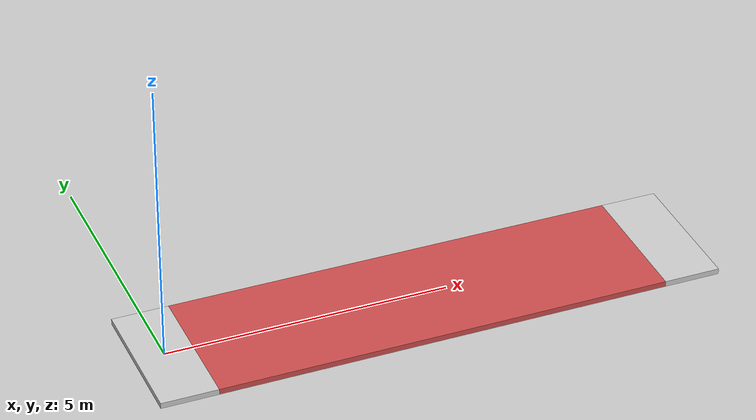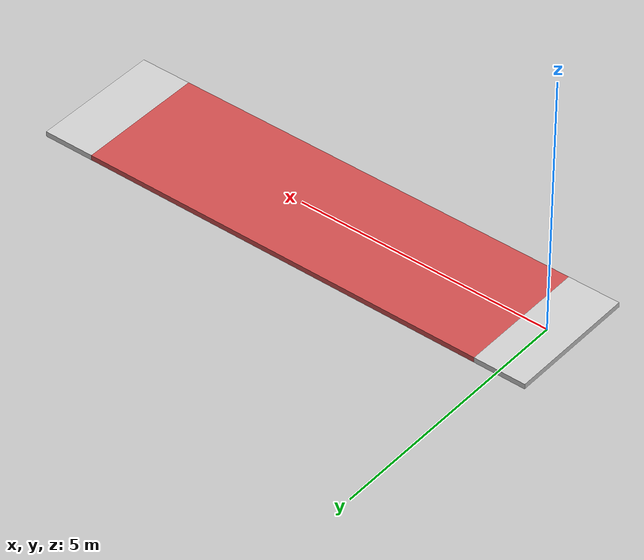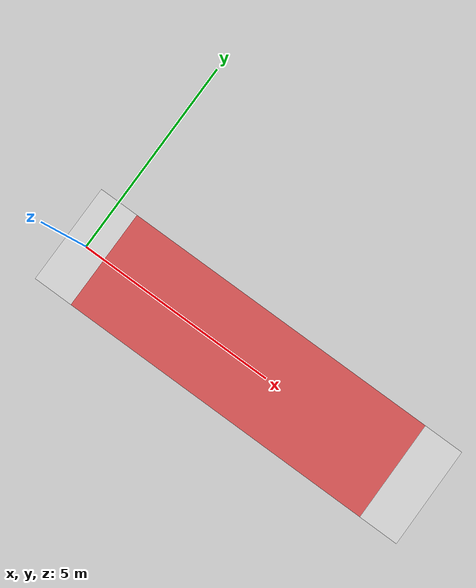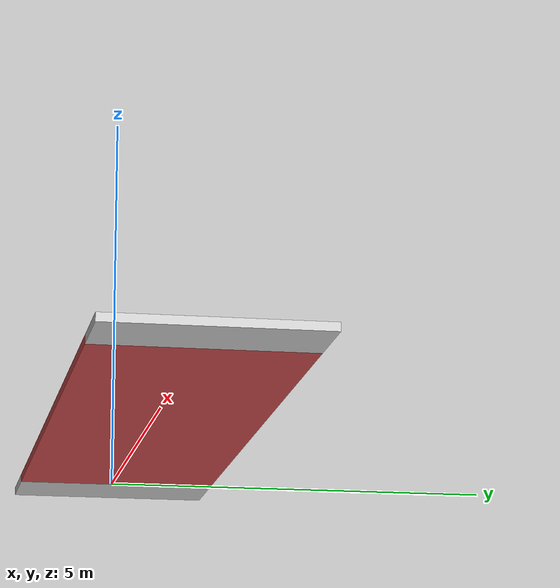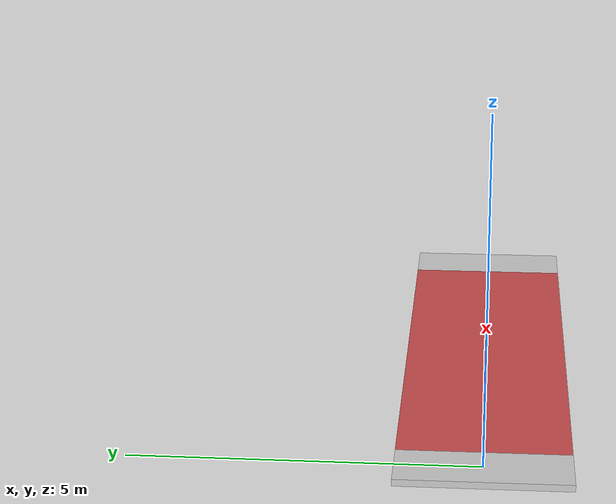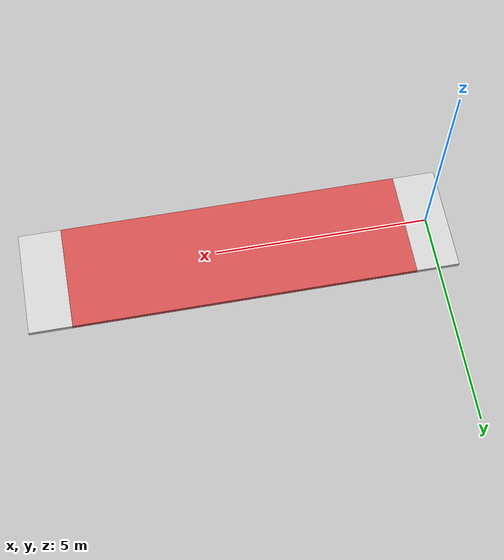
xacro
<?xml version="1.0"?>
<robot xmlns:xacro="http://www.ros.org/wiki/xacro" name="piso_regular_bloqueio">
  <!-- Plane properties -->
  <xacro:property name="initial_section_length" value="1.0" />
  <xacro:property name="middle_section_length" value="8.0" />
  <xacro:property name="final_section_length" value="1.0" />
  <xacro:property name="plane_width" value="2.5" />
  <xacro:property name="plane_height" value="0.1" />
  <xacro:property name="section_mass" value="10000" />
  <xacro:property name="section_ixx" value="1000" />
  <xacro:property name="section_iyy" value="1000" />
  <xacro:property name="section_izz" value="1000" />

  <!-- Materials -->
  <material name="initial_section_material">
    <color rgba="0.8 0.8 0.8 1"/>
  </material>
  <material name="middle_section_material">
    <color rgba="0.8 0.3 0.3 1"/>
  </material>
  <material name="final_section_material">
    <color rgba="0.8 0.8 0.8 1"/>
  </material>

  <!-- Base Link - Initial Section -->
  <link name="initial_link">
    <inertial>
      <origin xyz="0 0 -${plane_height/2}"/>
      <mass value="${section_mass}"/>
      <inertia ixx="${section_ixx}" ixy="0" ixz="0" iyy="${section_iyy}" iyz="0" izz="${section_izz}"/>
    </inertial>
    <visual>
      <origin xyz="0 0 -${plane_height/2}"/>
      <geometry>
        <box size="${initial_section_length} ${plane_width} ${plane_height}"/>
      </geometry>
      <material name="initial_section_material"/>
    </visual>
    <collision>
      <origin xyz="0 0 -${plane_height/2}"/>
      <geometry>
        <box size="${initial_section_length} ${plane_width} ${plane_height}"/>
      </geometry>
    </collision>
  </link>

  <!-- Middle Section -->
  <link name="middle_link">
    <inertial>
      <origin xyz="0 0 -${plane_height/2}"/>
      <mass value="${section_mass}"/>
      <inertia ixx="${section_ixx}" ixy="0" ixz="0" iyy="${section_iyy}" iyz="0" izz="${section_izz}"/>
    </inertial>
    <visual>
      <origin xyz="0 0 -${plane_height/2}"/>
      <geometry>
        <box size="${middle_section_length} ${plane_width} ${plane_height}"/>
      </geometry>
      <material name="middle_section_material"/>
    </visual>
    <collision>
      <origin xyz="0 0 -${plane_height/2}"/>
      <geometry>
        <box size="${middle_section_length} ${plane_width} ${plane_height}"/>
      </geometry>
    </collision>
  </link>

  <!-- Final Section -->
  <link name="final_link">
    <inertial>
      <origin xyz="0 0 -${plane_height/2}"/>
      <mass value="${section_mass}"/>
      <inertia ixx="${section_ixx}" ixy="0" ixz="0" iyy="${section_iyy}" iyz="0" izz="${section_izz}"/>
    </inertial>
    <visual>
      <origin xyz="0 0 -${plane_height/2}"/>
      <geometry>
        <box size="${final_section_length} ${plane_width} ${plane_height}"/>
      </geometry>
      <material name="final_section_material"/>
    </visual>
    <collision>
      <origin xyz="0 0 -${plane_height/2}"/>
      <geometry>
        <box size="${final_section_length} ${plane_width} ${plane_height}"/>
      </geometry>
    </collision>
  </link>

  <!-- Joints to connect all sections -->
  <joint name="initial_to_middle_joint" type="fixed">
    <parent link="initial_link"/>
    <child link="middle_link"/>
    <origin xyz="${initial_section_length/2 + middle_section_length/2} 0 0" rpy="0 0 0"/>
  </joint>

  <joint name="middle_to_final_joint" type="fixed">
    <parent link="middle_link"/>
    <child link="final_link"/>
    <origin xyz="${middle_section_length/2 + final_section_length/2} 0 0" rpy="0 0 0"/>
  </joint>

</robot>
